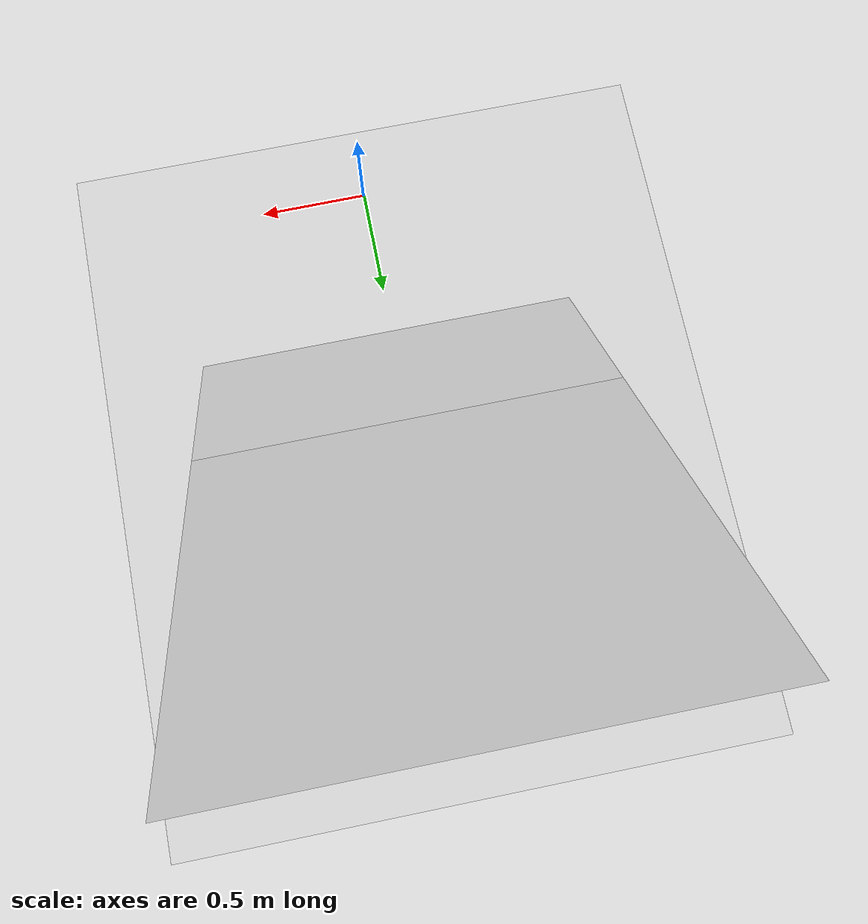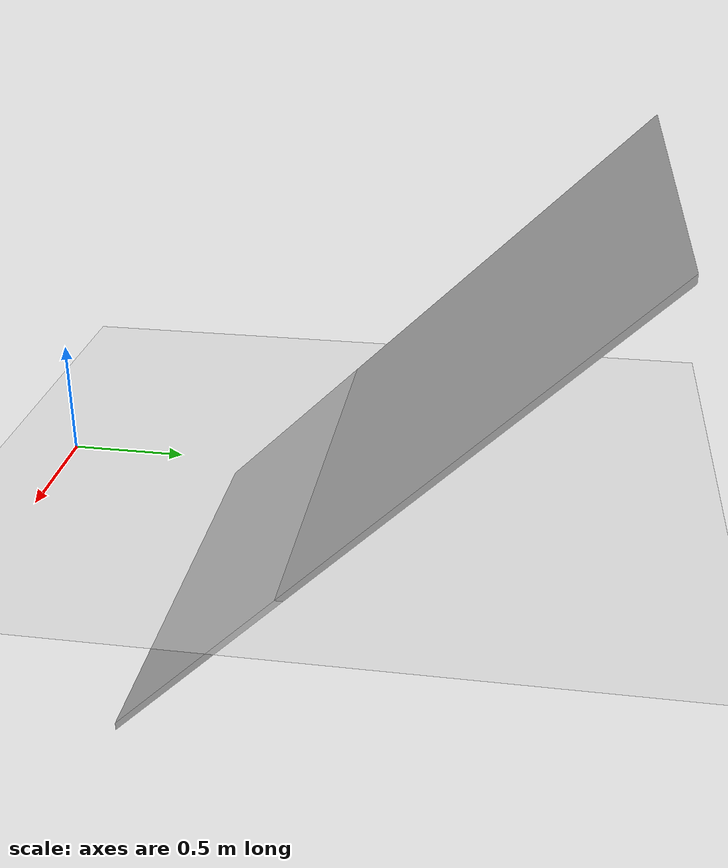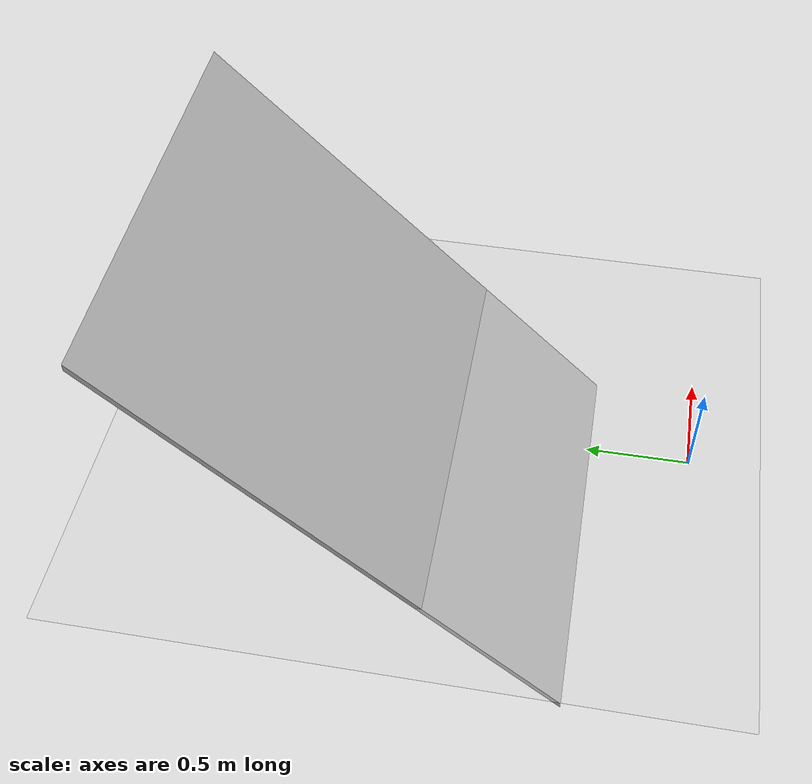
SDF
<?xml version="1.0" ?>
<sdf version="1.4">
  <world name="default">

    <physics type='ode'>
      <max_step_size>0.01</max_step_size>
      <real_time_factor>1</real_time_factor>
      <real_time_update_rate>100</real_time_update_rate>
      <gravity>0 0 0</gravity>
    </physics>

    <!-- A global light source -->
    <include>
      <uri>model://sun</uri>
    </include>

    <!-- A ground plane -->
    <include>
      <uri>model://ground_plane</uri>
    </include>

    <model name="ramp2">
      <static>true</static>
      <link name="nist_simple_ramp_120_link">
        <pose>0 1.5 -0.72 0 0 0</pose>
        <collision name="collision">
          <geometry>
            <mesh>
              <uri>model://ramp2/meshes/nist_simple_ramp_120.dae</uri>
              <scale>1.75 1.75 1.75</scale>
            </mesh>
          </geometry>
        </collision>
        <visual name="visual">
          <geometry>
            <mesh>
              <uri>model://ramp2/meshes/nist_simple_ramp_120.dae</uri>
              <scale>1.75 1.75 1.75</scale>
            </mesh>
          </geometry>
        </visual>
      </link>
    </model>

  </world>
</sdf>
